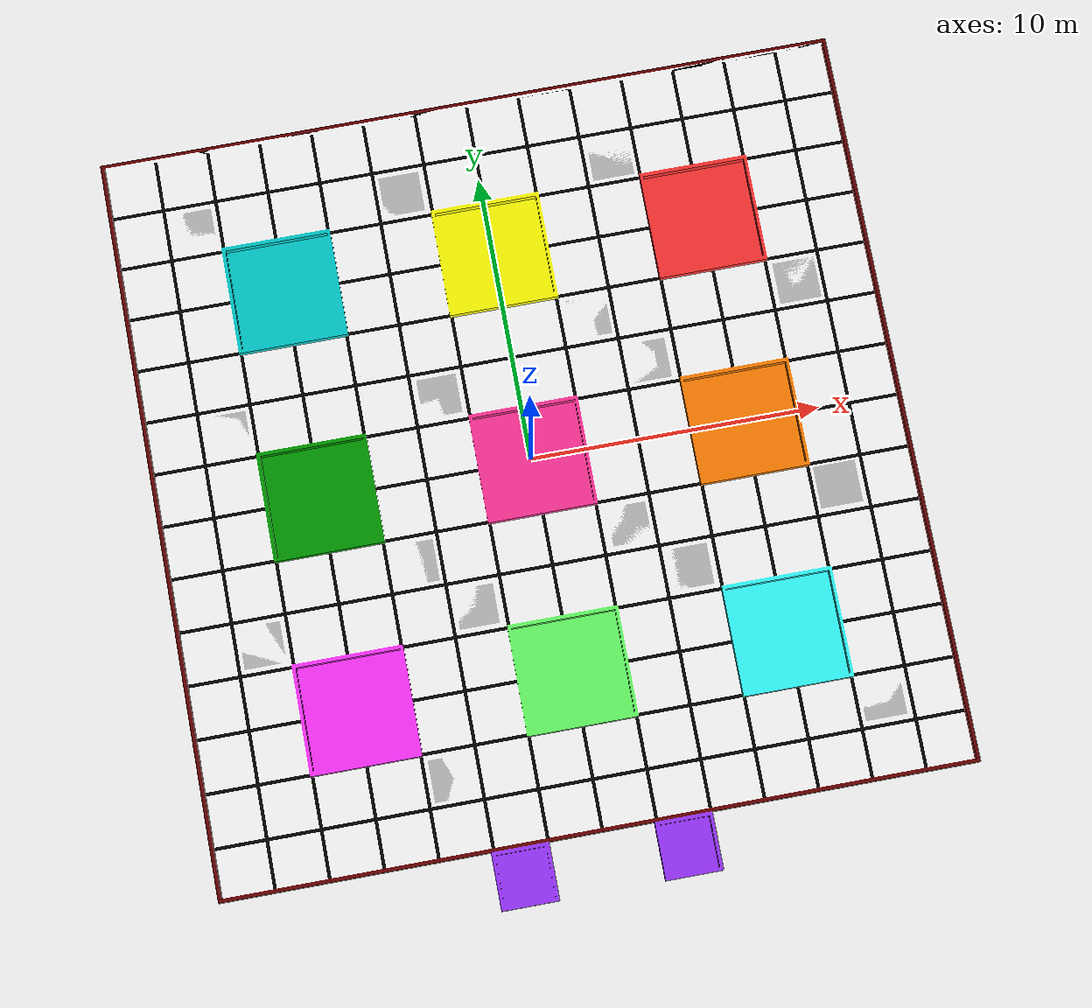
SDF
<?xml version='1.0'?>
<sdf version='1.6'>
  <model name='arena_s2'>
    <link name='arena_s2::link_0'>
      <pose frame=''>0 0 0 0 -0 0</pose>
      <self_collide>0</self_collide>
      <enable_wind>0</enable_wind>
      <kinematic>0</kinematic>
      <gravity>1</gravity>
      <inertial>
        <mass>1</mass>
        <pose frame=''>0 0 0 0 -0 0</pose>
        <inertia>
          <ixx>1</ixx>
          <ixy>0</ixy>
          <ixz>0</ixz>
          <iyy>1</iyy>
          <iyz>0</iyz>
          <izz>1</izz>
        </inertia>
      </inertial>
      <visual name='visual'>
        <pose frame=''>0 0 0 0 -0 0</pose>
        <geometry>
          <mesh>
            <uri>model://arena_s2/meshes/arena_s2.dae</uri>
            <scale>0.3048 0.3048 0.3048</scale>
          </mesh>
        </geometry>
        <transparency>0</transparency>
        <cast_shadows>1</cast_shadows>
      </visual>
      <collision name="collision">
        <geometry>
          <mesh>
            <uri>model://arena_s2/meshes/arena_s2.dae</uri>
          </mesh>
        </geometry>
      </collision>
    </link>
    <static>1</static>
    <allow_auto_disable>1</allow_auto_disable>
  </model>
</sdf>
